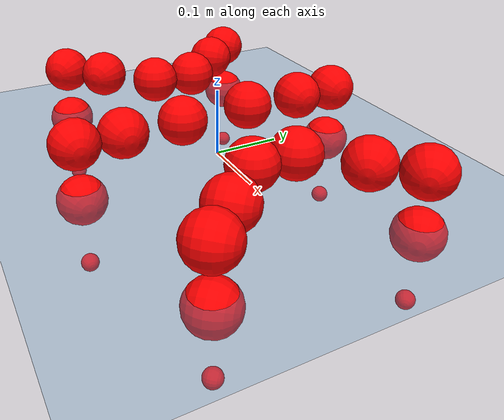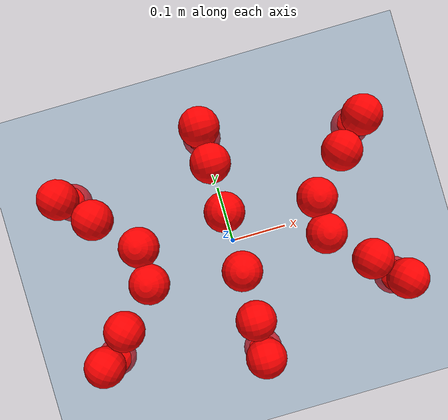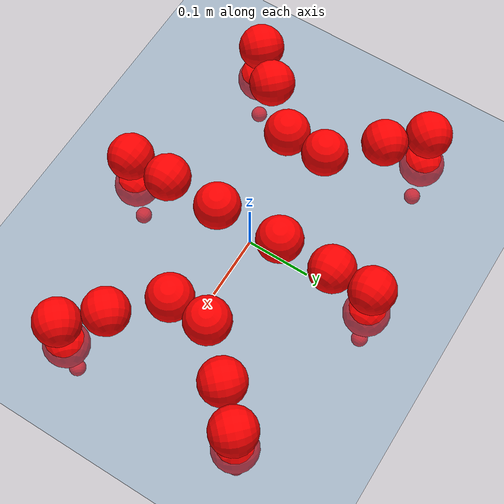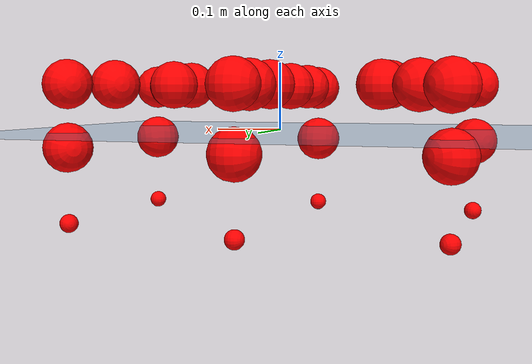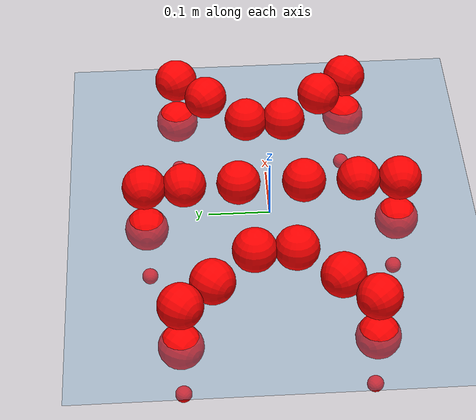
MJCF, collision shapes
<mujoco model="Golem">
  <compiler angle="radian" assetdir="assets" balanceinertia="true" inertiafromgeom="false"/>

  <option timestep="0.005" density="1.2" viscosity="2e-05"/>

  <size nkey="1"/>

  <visual>
    <quality shadowsize="8192"/>
    <map shadowclip="0.5"/>
  </visual>

  <default>
    <default class="/">
      <joint armature="0.01" damping="0.01" frictionloss="0.01"/>
      <geom contype="0" conaffinity="0" group="1" solref="-1000 -80"/>
      <site size="0.01 0.005 0.005" group="5"/>
      <general forcelimited="true" biastype="affine" gainprm="25" biasprm="0 -25 -0.5"/>
      <default class="visual">
        <geom type="mesh" group="2"/>
      </default>
      <default class="collision">
        <geom group="3"/>
      </default>
      <default class="foot">
        <geom size="0.01 0 0" condim="6" group="4" priority="1" solimp="0.015 1 0.01"/>
      </default>
      <default class="reward_collision_sphere">
        <geom group="5" rgba="1 0 0 1"/>
      </default>
    </default>
  </default>

  <asset>
    <texture type="skybox" colorspace="auto" name="//unnamed_texture_0" builtin="gradient" rgb1="0.95 0.95 0.95" rgb2="0.95 0.95 0.95" width="100" height="600"/>
    <texture type="2d" colorspace="auto" name="texplane" builtin="checker" rgb1="0.345 0.575 0.748" rgb2="0.345 0.575 0.748" markrgb="1 1 1" width="512" height="512"/>
    <material name="MatPlane" class="/" texture="texplane" texuniform="true" texrepeat="2 2" specular="0.9"/>
    <mesh name="body" class="/" file="body.stl" scale="0.001 0.001 0.001"/>
    <mesh name="coxa" class="/" file="coxa.stl" scale="0.001 0.001 0.001"/>
    <mesh name="femur" class="/" file="femur.stl" scale="0.001 0.001 0.001"/>
    <mesh name="tibia" class="/" file="tibia.stl" scale="0.001 0.001 0.001"/>
    <mesh name="tarsus" class="/" file="tarsus.stl" scale="0.001 0.001 0.001"/>
  </asset>

  <worldbody>
    <geom name="floor" class="/" size="100 100 0.125" type="plane" group="0" material="MatPlane"/>
    <light name="toplight_shadow" class="/" pos="0 0 5" dir="0.0990148 0.0990148 -0.990148" type="directional" ambient="0.04 0.04 0.04" diffuse="0.55 0.55 0.55" specular="0.12 0.12 0.12"/>
    <light name="toplight_fill" class="/" pos="0 0 5" dir="0.0990148 0.0990148 -0.990148" type="directional" castshadow="false" ambient="0.04 0.04 0.04" diffuse="0.3 0.3 0.3" specular="0.08 0.08 0.08"/>
    <body name="trunk" pos="-4.10036e-05 -0.000456633 0.000544018" quat="1 -5.10987e-05 -7.2711e-05 0.000107129">
      <inertial pos="-0.000545522 0.000672862 -0.00402639" quat="0.999995 -0.000644735 0.00301923 -0.000251586" mass="2.63914" diaginertia="0.0109529 0.00102282 0.011685"/>
      <joint name="//unnamed_joint_0" type="free"/>
      <geom name="//unnamed_geom_1" class="/" pos="0 0 0.0660235" quat="1 0 0 0" type="mesh" rgba="0.9 0.9 0.9 1" mesh="body"/>
      <site name="imu" class="/" pos="0.133286 0.00223721 0.111212" size="0.0089316"/>
      <camera name="track" class="/" pos="0 -1.2616 0" quat="0.707107 0.707107 0 0" mode="trackcom"/>
      <camera name="ego_camera" class="/" pos="0.132218 0 0.103162" quat="-0.5 -0.5 0.5 0.5"/>
      <body name="coxa_RR" pos="-0.180298 -0.0534694 0.067853" quat="0.382382 -8.95778e-05 -0.000809287 -0.924004">
        <inertial pos="2.10546e-05 -0.00061286 0.00149143" quat="0.999988 -0.00377945 -0.000822481 0.00284847" mass="0.144168" diaginertia="0.0109722 0.00101367 0.0119952"/>
        <joint name="coxa_joint_RR" class="/" pos="0 0 0" axis="-0.00510096 -0.00135857 -0.999986" range="-3.15756 3.14966" armature="0.00908185" damping="0.00229034" frictionloss="0.0085633"/>
        <geom name="//unnamed_geom_2" class="/" type="mesh" rgba="0.2 0.2 0.2 1" mesh="coxa"/>
        <geom name="//unnamed_geom_3" class="reward_collision_sphere" size="0.0357264" pos="-0.0305118 0 0"/>
        <body name="femur_RR" pos="0.061186 0.00167532 -3.27877e-05" quat="0.500235 -0.499393 0.500026 0.500346">
          <inertial pos="-0.00015716 0.00133546 -0.000872437" quat="0.999995 -5.02819e-05 0.00151044 -0.00266865" mass="0.141367" diaginertia="0.0106774 0.00100131 0.0115659"/>
          <joint name="femur_joint_RR" class="/" pos="0 0 0" axis="-4.73113e-05 0.00129948 -0.999999" range="-3.15136 3.15122" armature="0.00913593" damping="0.00212576" frictionloss="0.00889565"/>
          <geom name="//unnamed_geom_4" class="/" type="mesh" rgba="0.9 0.9 0.9 1" mesh="femur"/>
          <geom name="//unnamed_geom_5" class="reward_collision_sphere" size="0.0357264"/>
          <body name="tibia_RR" pos="0.000320664 -0.0695938 0.0005838" quat="5.68542e-05 1 -3.74994e-05 1.40726e-05">
            <inertial pos="-3.83052e-05 0.00135715 0.000329586" quat="1 1.25956e-05 -8.3916e-06 1.12283e-05" mass="0.143403" diaginertia="0.010931 0.00100417 0.0116745"/>
            <joint name="tibia_joint_RR" class="/" pos="0 0 0" axis="-0.00574171 -0.00151387 0.999982" range="-3.11569 3.14376" armature="0.00933805" damping="0" frictionloss="0.00973651"/>
            <geom name="//unnamed_geom_6" class="/" type="mesh" rgba="0.2 0.2 0.2 1" mesh="tibia"/>
            <geom name="//unnamed_geom_7" class="reward_collision_sphere" size="0.0357264"/>
            <body name="tarsus_RR" pos="0.0881602 0.000279737 -0.00181336" quat="1 0.000208168 0.000196326 -0.000254636">
              <inertial pos="0.0596946 6.20736e-05 -0.000333083" quat="0.502471 0.496485 0.501943 0.499079" mass="0.141114" diaginertia="0.0108306 0.000992893 0.0118233"/>
              <joint name="tarsus_joint_RR" class="/" pos="0 0 0" axis="-0.000429905 -0.000542891 1" range="-3.12196 3.13252" armature="0.00910462" damping="0.00348243" frictionloss="0.00916562"/>
              <geom name="//unnamed_geom_8" class="/" type="mesh" rgba="0.9 0.9 0.9 1" mesh="tarsus"/>
              <geom name="foot_1" class="foot" size="0.0087127" pos="0.113911 0 0" quat="0 -0.707107 0 0.707107"/>
              <geom name="//unnamed_geom_10" class="reward_collision_sphere" size="0.0357264"/>
              <geom name="//unnamed_geom_11" class="reward_collision_sphere" size="0.0133974" pos="0.109334 0 0"/>
              <site name="foot_1" class="foot" pos="0.113911 0 0" quat="0 -0.707107 0 0.707107" size="0.0089316"/>
            </body>
          </body>
        </body>
      </body>
      <body name="coxa_RM" pos="0.00107012 -0.0855783 0.065466" quat="0.70716 -1.36075e-05 -7.12369e-05 -0.707053">
        <inertial pos="0.00057921 -0.000187343 -0.000186189" quat="0.999968 -0.00268426 -0.000909383 -0.00745121" mass="0.147163" diaginertia="0.0111012 0.00103517 0.0119297"/>
        <joint name="coxa_joint_RM" class="/" pos="0 0 0" axis="-0.00258242 0.00592043 -0.999979" range="-3.13995 3.15708" armature="0.00906021" damping="0.0129995" frictionloss="0.00871024"/>
        <geom name="//unnamed_geom_12" class="/" type="mesh" rgba="0.2 0.2 0.2 1" mesh="coxa"/>
        <geom name="//unnamed_geom_13" class="reward_collision_sphere" size="0.0357264" pos="-0.0305118 0 0"/>
        <body name="femur_RM" pos="0.0578912 -0.000910037 -0.000279341" quat="0.500064 -0.50021 0.499756 0.49997">
          <inertial pos="-0.000170359 -0.000471048 -1.67369e-05" quat="0.999997 -0.00130472 0.00192429 -0.000235112" mass="0.141168" diaginertia="0.0108243 0.00100466 0.0118464"/>
          <joint name="femur_joint_RM" class="/" pos="0 0 0" axis="-5.5618e-06 6.74459e-06 -1" range="-3.13368 3.11955" armature="0.00876979" damping="0.00614556" frictionloss="0.0093043"/>
          <geom name="//unnamed_geom_14" class="/" type="mesh" rgba="0.9 0.9 0.9 1" mesh="femur"/>
          <geom name="//unnamed_geom_15" class="reward_collision_sphere" size="0.0357264"/>
          <body name="tibia_RM" pos="0.00175676 -0.0670876 -0.000818957" quat="-0.000131599 1 -0.000321555 -5.50138e-05">
            <inertial pos="0.000228907 0.000247571 0.000137497" quat="0.999999 0.00131031 -0.000408643 0.000123545" mass="0.144424" diaginertia="0.0109184 0.000995511 0.0118149"/>
            <joint name="tibia_joint_RM" class="/" pos="0 0 0" axis="-0.00161784 -0.0045937 0.999988" range="-3.15812 3.13161" armature="0.00836198" damping="0.00618838" frictionloss="0.00943604"/>
            <geom name="//unnamed_geom_16" class="/" type="mesh" rgba="0.2 0.2 0.2 1" mesh="tibia"/>
            <geom name="//unnamed_geom_17" class="reward_collision_sphere" size="0.0357264"/>
            <body name="tarsus_RM" pos="0.0871933 -0.00143273 0.000813157" quat="1 -2.39585e-05 7.47327e-05 -0.000133648">
              <inertial pos="0.0610225 0.000940557 0.00030695" quat="0.500668 0.499159 0.499556 0.500616" mass="0.144482" diaginertia="0.0110336 0.00101178 0.0118461"/>
              <joint name="tarsus_joint_RM" class="/" pos="0 0 0" axis="1.38781e-05 -0.0038017 0.999993" range="-3.15585 3.13404" armature="0.00936833" damping="0.00330869" frictionloss="0.00894219"/>
              <geom name="//unnamed_geom_18" class="/" type="mesh" rgba="0.9 0.9 0.9 1" mesh="tarsus"/>
              <geom name="foot_2" class="foot" size="0.00920104" pos="0.113911 0 0" quat="0 -0.707107 0 0.707107"/>
              <geom name="//unnamed_geom_20" class="reward_collision_sphere" size="0.0357264"/>
              <geom name="//unnamed_geom_21" class="reward_collision_sphere" size="0.0133974" pos="0.109334 0 0"/>
              <site name="foot_2" class="foot" pos="0.113911 0 0" quat="0 -0.707107 0 0.707107" size="0.0089316"/>
            </body>
          </body>
        </body>
      </body>
      <body name="coxa_RF" pos="0.179889 -0.0541424 0.0667369" quat="0.923863 1.49203e-05 -1.39554e-05 -0.382723">
        <inertial pos="-0.00109549 0.000180657 0.000112094" quat="0.999995 -0.00297441 0.000930643 0.000741524" mass="0.143112" diaginertia="0.0111079 0.00102892 0.0118824"/>
        <joint name="coxa_joint_RF" class="/" pos="0 0 0" axis="0.00307319 -0.00369286 -0.999988" range="-3.13379 3.15019" armature="0.008752" damping="0.0153215" frictionloss="0.00933696"/>
        <geom name="//unnamed_geom_22" class="/" type="mesh" rgba="0.2 0.2 0.2 1" mesh="coxa"/>
        <geom name="//unnamed_geom_23" class="reward_collision_sphere" size="0.0357264" pos="-0.0305118 0 0"/>
        <body name="femur_RF" pos="0.0609891 0.000326585 -0.000544163" quat="0.500132 -0.499805 0.500076 0.499987">
          <inertial pos="0.000676321 -0.000404325 0.00025504" quat="0.99999 -0.000741698 0.00278982 -0.0033417" mass="0.143488" diaginertia="0.0109346 0.00100028 0.0117686"/>
          <joint name="femur_joint_RF" class="/" pos="0 0 0" axis="0.00434991 -0.000659718 -0.99999" range="-3.15897 3.13842" armature="0.00914297" damping="0.00716195" frictionloss="0.00915912"/>
          <geom name="//unnamed_geom_24" class="/" type="mesh" rgba="0.9 0.9 0.9 1" mesh="femur"/>
          <geom name="//unnamed_geom_25" class="reward_collision_sphere" size="0.0357264"/>
          <body name="tibia_RF" pos="0.00132707 -0.069006 -5.69848e-05" quat="0.000115074 1 -5.95037e-05 0.000535828">
            <inertial pos="-0.000111016 -0.00078398 -0.000350201" quat="0.999991 -0.00224468 0.0033822 0.00103549" mass="0.137681" diaginertia="0.0107472 0.00097444 0.0116369"/>
            <joint name="tibia_joint_RF" class="/" pos="0 0 0" axis="0.00333439 -0.000195071 0.999994" range="-3.11998 3.13464" armature="0.00882804" damping="0" frictionloss="0.00926259"/>
            <geom name="//unnamed_geom_26" class="/" type="mesh" rgba="0.2 0.2 0.2 1" mesh="tibia"/>
            <geom name="//unnamed_geom_27" class="reward_collision_sphere" size="0.0357264"/>
            <body name="tarsus_RF" pos="0.0870514 0.000615662 -0.000532634" quat="1 -3.04974e-06 7.75282e-05 -6.13456e-05">
              <inertial pos="0.0599659 0.000472768 -0.000488931" quat="0.501563 0.501121 0.496662 0.500639" mass="0.14418" diaginertia="0.0111497 0.00100542 0.011901"/>
              <joint name="tarsus_joint_RF" class="/" pos="0 0 0" axis="-0.00276896 0.0107912 0.999938" range="-3.14993 3.13544" armature="0.00900941" damping="0.0047895" frictionloss="0.0085601"/>
              <geom name="//unnamed_geom_28" class="/" type="mesh" rgba="0.9 0.9 0.9 1" mesh="tarsus"/>
              <geom name="foot_3" class="foot" size="0.00861434" pos="0.113911 0 0" quat="0 -0.707107 0 0.707107"/>
              <geom name="//unnamed_geom_30" class="reward_collision_sphere" size="0.0357264"/>
              <geom name="//unnamed_geom_31" class="reward_collision_sphere" size="0.0133974" pos="0.109334 0 0"/>
              <site name="foot_3" class="foot" pos="0.113911 0 0" quat="0 -0.707107 0 0.707107" size="0.0089316"/>
            </body>
          </body>
        </body>
      </body>
      <body name="coxa_LR" pos="-0.180167 0.0552471 0.0670582" quat="0.382319 -8.67252e-05 -3.10748e-06 0.92403">
        <inertial pos="0.00119133 7.49184e-05 -0.000106896" quat="0.999999 -0.000795905 -1.59147e-05 -0.000892072" mass="0.143132" diaginertia="0.0110054 0.00100835 0.0117464"/>
        <joint name="coxa_joint_LR" class="/" pos="0 0 0" axis="-0.00324162 0.00335263 -0.999989" range="-3.11937 3.15807" armature="0.00882334" damping="0.0103324" frictionloss="0.00883748"/>
        <geom name="//unnamed_geom_32" class="/" type="mesh" rgba="0.2 0.2 0.2 1" mesh="coxa"/>
        <geom name="//unnamed_geom_33" class="reward_collision_sphere" size="0.0357264" pos="-0.0305118 0 0"/>
        <body name="femur_LR" pos="0.0624694 -0.00277329 -0.00126561" quat="0.499865 -0.500176 0.499894 0.500064">
          <inertial pos="0.000336621 -0.000392025 -0.000892203" quat="0.999979 -0.0043465 0.00345294 0.00331842" mass="0.144321" diaginertia="0.0108866 0.00100608 0.0117678"/>
          <joint name="femur_joint_LR" class="/" pos="0 0 0" axis="0.0104767 -0.00159238 0.999944" range="-3.12023 3.12182" armature="0.00970307" damping="0.00633082" frictionloss="0.00879795"/>
          <geom name="//unnamed_geom_34" class="/" type="mesh" rgba="0.9 0.9 0.9 1" mesh="femur"/>
          <geom name="//unnamed_geom_35" class="reward_collision_sphere" size="0.0357264"/>
          <body name="tibia_LR" pos="0.000570551 -0.06919 -0.00173671" quat="1.35566e-05 1 -0.000238569 0.000238758">
            <inertial pos="0.000726686 -0.000432706 0.000292439" quat="0.999999 0.000944373 -0.00137088 -1.50241e-05" mass="0.144116" diaginertia="0.0109252 0.000987091 0.0118272"/>
            <joint name="tibia_joint_LR" class="/" pos="0 0 0" axis="-0.000626338 -0.000130061 -1" range="-3.11375 3.13606" armature="0.00883457" damping="0.00862295" frictionloss="0.00895899"/>
            <geom name="//unnamed_geom_36" class="/" type="mesh" rgba="0.2 0.2 0.2 1" mesh="tibia"/>
            <geom name="//unnamed_geom_37" class="reward_collision_sphere" size="0.0357264"/>
            <body name="tarsus_LR" pos="0.0883063 0.00107406 0.00141189" quat="1 -7.15466e-05 -1.36249e-05 -5.03868e-05">
              <inertial pos="0.0616964 -0.00022174 0.000562598" quat="0.49985 0.499818 0.5001 0.500232" mass="0.141875" diaginertia="0.0109837 0.00102972 0.011652"/>
              <joint name="tarsus_joint_LR" class="/" pos="0 0 0" axis="-0.00155122 -0.00118516 -0.999998" range="-3.14027 3.1248" armature="0.00894873" damping="0.000158408" frictionloss="0.00926479"/>
              <geom name="//unnamed_geom_38" class="/" type="mesh" rgba="0.9 0.9 0.9 1" mesh="tarsus"/>
              <geom name="foot_4" class="foot" size="0.00861905" pos="0.113911 0 0" quat="0.707107 0 -0.707107 0"/>
              <geom name="//unnamed_geom_40" class="reward_collision_sphere" size="0.0357264"/>
              <geom name="//unnamed_geom_41" class="reward_collision_sphere" size="0.0133974" pos="0.109334 0 0"/>
              <site name="foot_4" class="foot" pos="0.113911 0 0" quat="0.707107 0 -0.707107 0" size="0.0089316"/>
            </body>
          </body>
        </body>
      </body>
      <body name="coxa_LM" pos="-0.000312552 0.0817527 0.067429" quat="0.707247 -0.000118557 0.000120301 0.706967">
        <inertial pos="0.000372651 -0.000161664 -0.000371074" quat="0.999998 0.000365369 4.60079e-05 -0.00174157" mass="0.143517" diaginertia="0.0107042 0.000994307 0.0116274"/>
        <joint name="coxa_joint_LM" class="/" pos="0 0 0" axis="-0.0032944 -0.00226745 -0.999992" range="-3.14528 3.1436" armature="0.0086294" damping="0.00534588" frictionloss="0.00896896"/>
        <geom name="//unnamed_geom_42" class="/" type="mesh" rgba="0.2 0.2 0.2 1" mesh="coxa"/>
        <geom name="//unnamed_geom_43" class="reward_collision_sphere" size="0.0357264" pos="-0.0305118 0 0"/>
        <body name="femur_LM" pos="0.0569485 6.84941e-05 -0.000791438" quat="0.499897 -0.500081 0.499944 0.500078">
          <inertial pos="7.81743e-05 3.54679e-05 -0.00176709" quat="1 0.000265454 -6.58784e-05 -0.000108015" mass="0.144977" diaginertia="0.0110204 0.00101758 0.0117822"/>
          <joint name="femur_joint_LM" class="/" pos="0 0 0" axis="-0.00548037 -0.00357702 0.999979" range="-3.14232 3.10799" armature="0.00922266" damping="0.000594814" frictionloss="0.00872557"/>
          <geom name="//unnamed_geom_44" class="/" type="mesh" rgba="0.9 0.9 0.9 1" mesh="femur"/>
          <geom name="//unnamed_geom_45" class="reward_collision_sphere" size="0.0357264"/>
          <body name="tibia_LM" pos="-0.000219353 -0.0647265 0.00132648" quat="-0.000109431 1 -0.000432199 -0.000248456">
            <inertial pos="-0.00109456 -0.00016343 -0.000288223" quat="0.999998 -0.00194339 -0.000679714 0.000671213" mass="0.137797" diaginertia="0.0106242 0.000973464 0.0113926"/>
            <joint name="tibia_joint_LM" class="/" pos="0 0 0" axis="0.00305066 0.000908742 -0.999995" range="-3.13342 3.15821" armature="0.00982184" damping="0" frictionloss="0.00905464"/>
            <geom name="//unnamed_geom_46" class="/" type="mesh" rgba="0.2 0.2 0.2 1" mesh="tibia"/>
            <geom name="//unnamed_geom_47" class="reward_collision_sphere" size="0.0357264"/>
            <body name="tarsus_LM" pos="0.0899003 -0.000452417 -0.00108989" quat="1 0.000308827 0.000130251 0.000134217">
              <inertial pos="0.0626061 -0.000788676 -0.000295487" quat="0.501072 0.498769 0.503153 0.496984" mass="0.13981" diaginertia="0.0106717 0.000953404 0.0115342"/>
              <joint name="tarsus_joint_LM" class="/" pos="0 0 0" axis="-0.000334842 -0.00203019 -0.999998" stiffness="0.000196523" range="-3.13858 3.13981" armature="0.0087871" damping="0.0120591" frictionloss="0.0096158"/>
              <geom name="//unnamed_geom_48" class="/" type="mesh" rgba="0.9 0.9 0.9 1" mesh="tarsus"/>
              <geom name="foot_5" class="foot" size="0.00879301" pos="0.113911 0 0" quat="0.707107 0 -0.707107 0"/>
              <geom name="//unnamed_geom_50" class="reward_collision_sphere" size="0.0357264"/>
              <geom name="//unnamed_geom_51" class="reward_collision_sphere" size="0.0133974" pos="0.109334 0 0"/>
              <site name="foot_5" class="foot" pos="0.113911 0 0" quat="0.707107 0 -0.707107 0" size="0.0089316"/>
            </body>
          </body>
        </body>
      </body>
      <body name="coxa_LF" pos="0.18112 0.0524499 0.0671277" quat="0.923882 4.00429e-05 4.55546e-05 0.382676">
        <inertial pos="-0.000906791 -0.00163478 0.00043788" quat="0.999997 0.000134689 0.00100272 -0.0020989" mass="0.142649" diaginertia="0.0108608 0.000975357 0.0116637"/>
        <joint name="coxa_joint_LF" class="/" pos="0 0 0" axis="-0.00257377 -0.000360307 -0.999997" stiffness="2.40227e-05" range="-3.1225 3.13656" armature="0.00844771" damping="0" frictionloss="0.00893735"/>
        <geom name="//unnamed_geom_52" class="/" type="mesh" rgba="0.2 0.2 0.2 1" mesh="coxa"/>
        <geom name="//unnamed_geom_53" class="reward_collision_sphere" size="0.0357264" pos="-0.0305118 0 0"/>
        <body name="femur_LF" pos="0.0608098 0.00162527 0.000319951" quat="0.50006 -0.499984 0.499977 0.499979">
          <inertial pos="-0.000144246 0.00066578 -0.000425701" quat="1 3.25961e-05 -0.000497292 0.000291693" mass="0.140236" diaginertia="0.0106017 0.000988619 0.011572"/>
          <joint name="femur_joint_LF" class="/" pos="0 0 0" axis="-0.00292275 -0.00518508 0.999982" range="-3.12027 3.14191" armature="0.00902303" damping="0" frictionloss="0.00906478"/>
          <geom name="//unnamed_geom_54" class="/" type="mesh" rgba="0.9 0.9 0.9 1" mesh="femur"/>
          <geom name="//unnamed_geom_55" class="reward_collision_sphere" size="0.0357264"/>
          <body name="tibia_LF" pos="-0.000287674 -0.0700401 -0.000405703" quat="0.000134979 1 -0.000291578 -0.000331096">
            <inertial pos="-0.000704889 0.00112238 0.000884872" quat="1 -0.000104777 0.000532228 -0.000538048" mass="0.141551" diaginertia="0.0109478 0.00100365 0.0118078"/>
            <joint name="tibia_joint_LF" class="/" pos="0 0 0" axis="0.0024924 0.00073452 -0.999997" range="-3.1367 3.13585" armature="0.00938799" damping="0" frictionloss="0.0087835"/>
            <geom name="//unnamed_geom_56" class="/" type="mesh" rgba="0.2 0.2 0.2 1" mesh="tibia"/>
            <geom name="//unnamed_geom_57" class="reward_collision_sphere" size="0.0357264"/>
            <body name="tarsus_LF" pos="0.0908708 0.000681498 -0.000969621" quat="1 6.15459e-05 -7.55321e-05 3.47319e-05">
              <inertial pos="0.0607502 4.69034e-05 0.000286347" quat="0.504498 0.504618 0.496283 0.494515" mass="0.144303" diaginertia="0.0109135 0.00100096 0.0116274"/>
              <joint name="tarsus_joint_LF" class="/" pos="0 0 0" axis="0.00832227 0.00219724 -0.999963" stiffness="0.0293876" range="-3.15766 3.14227" armature="0.00881505" damping="0.0243178" frictionloss="0.00936748"/>
              <geom name="//unnamed_geom_58" class="/" type="mesh" rgba="0.9 0.9 0.9 1" mesh="tarsus"/>
              <geom name="foot_6" class="foot" size="0.0090075" pos="0.113911 0 0" quat="0.707107 0 -0.707107 0"/>
              <geom name="//unnamed_geom_60" class="reward_collision_sphere" size="0.0357264"/>
              <geom name="//unnamed_geom_61" class="reward_collision_sphere" size="0.0133974" pos="0.109334 0 0"/>
              <site name="foot_6" class="foot" pos="0.113911 0 0" quat="0.707107 0 -0.707107 0" size="0.0089316"/>
            </body>
          </body>
        </body>
      </body>
    </body>
  </worldbody>

  <contact>
    <pair class="/" geom1="floor" geom2="foot_1" name="//unnamed_contact_0"/>
    <pair class="/" geom1="floor" geom2="foot_2" name="//unnamed_contact_1"/>
    <pair class="/" geom1="floor" geom2="foot_3" name="//unnamed_contact_2"/>
    <pair class="/" geom1="floor" geom2="foot_4" name="//unnamed_contact_3"/>
    <pair class="/" geom1="floor" geom2="foot_5" name="//unnamed_contact_4"/>
    <pair class="/" geom1="floor" geom2="foot_6" name="//unnamed_contact_5"/>
  </contact>

  <actuator>
    <general name="coxa_joint_RR" class="/" joint="coxa_joint_RR" forcerange="-6.52824 6.52824" gainprm="21.4991" biasprm="0 -21.4991 -0.458077"/>
    <general name="femur_joint_RR" class="/" joint="femur_joint_RR" forcerange="-6.44828 6.44828" gainprm="21.4991" biasprm="0 -21.4991 -0.458077"/>
    <general name="tibia_joint_RR" class="/" joint="tibia_joint_RR" forcerange="-6.47162 6.47162" gainprm="21.4991" biasprm="0 -21.4991 -0.458077"/>
    <general name="tarsus_joint_RR" class="/" joint="tarsus_joint_RR" forcerange="-6.58909 6.58909" gainprm="21.4991" biasprm="0 -21.4991 -0.458077"/>
    <general name="coxa_joint_RM" class="/" joint="coxa_joint_RM" forcerange="-6.73772 6.73772" gainprm="21.4991" biasprm="0 -21.4991 -0.458077"/>
    <general name="femur_joint_RM" class="/" joint="femur_joint_RM" forcerange="-6.60104 6.60104" gainprm="21.4991" biasprm="0 -21.4991 -0.458077"/>
    <general name="tibia_joint_RM" class="/" joint="tibia_joint_RM" forcerange="-6.40936 6.40936" gainprm="21.4991" biasprm="0 -21.4991 -0.458077"/>
    <general name="tarsus_joint_RM" class="/" joint="tarsus_joint_RM" forcerange="-6.28754 6.28754" gainprm="21.4991" biasprm="0 -21.4991 -0.458077"/>
    <general name="coxa_joint_RF" class="/" joint="coxa_joint_RF" forcerange="-6.45702 6.45702" gainprm="21.4991" biasprm="0 -21.4991 -0.458077"/>
    <general name="femur_joint_RF" class="/" joint="femur_joint_RF" forcerange="-6.65051 6.65051" gainprm="21.4991" biasprm="0 -21.4991 -0.458077"/>
    <general name="tibia_joint_RF" class="/" joint="tibia_joint_RF" forcerange="-6.33446 6.33446" gainprm="21.4991" biasprm="0 -21.4991 -0.458077"/>
    <general name="tarsus_joint_RF" class="/" joint="tarsus_joint_RF" forcerange="-6.63428 6.63428" gainprm="21.4991" biasprm="0 -21.4991 -0.458077"/>
    <general name="coxa_joint_LR" class="/" joint="coxa_joint_LR" forcerange="-6.55787 6.55787" gainprm="21.4991" biasprm="0 -21.4991 -0.458077"/>
    <general name="femur_joint_LR" class="/" joint="femur_joint_LR" forcerange="-6.49352 6.49352" gainprm="21.4991" biasprm="0 -21.4991 -0.458077"/>
    <general name="tibia_joint_LR" class="/" joint="tibia_joint_LR" forcerange="-6.42536 6.42536" gainprm="21.4991" biasprm="0 -21.4991 -0.458077"/>
    <general name="tarsus_joint_LR" class="/" joint="tarsus_joint_LR" forcerange="-6.47964 6.47964" gainprm="21.4991" biasprm="0 -21.4991 -0.458077"/>
    <general name="coxa_joint_LM" class="/" joint="coxa_joint_LM" forcerange="-6.48361 6.48361" gainprm="21.4991" biasprm="0 -21.4991 -0.458077"/>
    <general name="femur_joint_LM" class="/" joint="femur_joint_LM" forcerange="-6.44141 6.44141" gainprm="21.4991" biasprm="0 -21.4991 -0.458077"/>
    <general name="tibia_joint_LM" class="/" joint="tibia_joint_LM" forcerange="-6.5011 6.5011" gainprm="21.4991" biasprm="0 -21.4991 -0.458077"/>
    <general name="tarsus_joint_LM" class="/" joint="tarsus_joint_LM" forcerange="-6.29614 6.29614" gainprm="21.4991" biasprm="0 -21.4991 -0.458077"/>
    <general name="coxa_joint_LF" class="/" joint="coxa_joint_LF" forcerange="-6.7445 6.7445" gainprm="21.4991" biasprm="0 -21.4991 -0.458077"/>
    <general name="femur_joint_LF" class="/" joint="femur_joint_LF" forcerange="-6.49219 6.49219" gainprm="21.4991" biasprm="0 -21.4991 -0.458077"/>
    <general name="tibia_joint_LF" class="/" joint="tibia_joint_LF" forcerange="-6.57425 6.57425" gainprm="21.4991" biasprm="0 -21.4991 -0.458077"/>
    <general name="tarsus_joint_LF" class="/" joint="tarsus_joint_LF" forcerange="-6.51784 6.51784" gainprm="21.4991" biasprm="0 -21.4991 -0.458077"/>
  </actuator>

  <sensor>
    <gyro site="imu" name="imu_angular_velocity"/>
    <velocimeter site="imu" name="imu_linear_velocity"/>
    <framelinvel objtype="site" objname="foot_1" name="foot_1_global_linear_velocity"/>
    <framelinvel objtype="site" objname="foot_2" name="foot_2_global_linear_velocity"/>
    <framelinvel objtype="site" objname="foot_3" name="foot_3_global_linear_velocity"/>
    <framelinvel objtype="site" objname="foot_4" name="foot_4_global_linear_velocity"/>
    <framelinvel objtype="site" objname="foot_5" name="foot_5_global_linear_velocity"/>
    <framelinvel objtype="site" objname="foot_6" name="foot_6_global_linear_velocity"/>
  </sensor>

  <keyframe>
    <key name="home" qpos="0 0 0.1457 1 0 0 0 0 0 0 0 0 0 0 0 0 0 0 0 0 0 0 0 0 0 0 0 0 0 0 0"/>
  </keyframe>
</mujoco>
